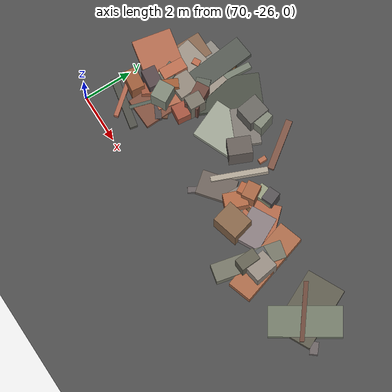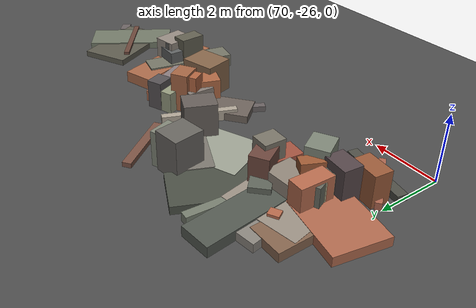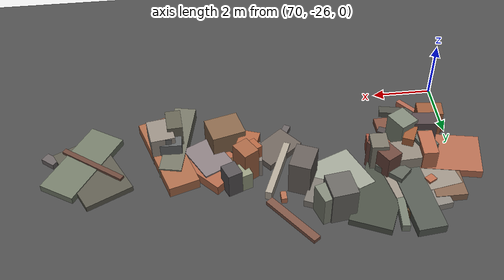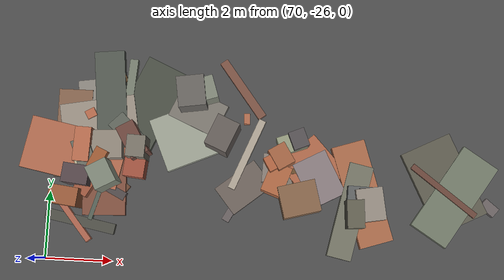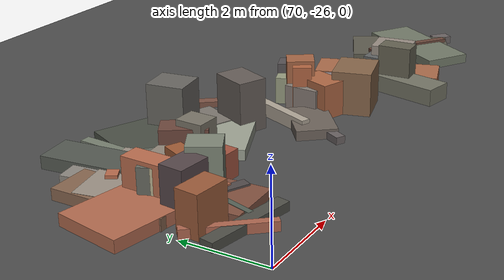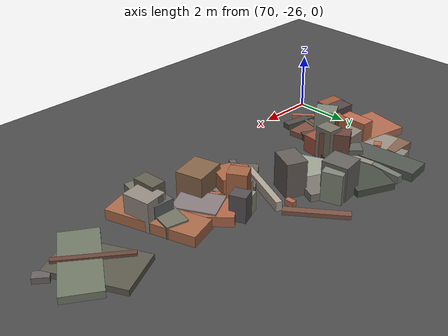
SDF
<sdf version="1.6">
 <world name="navitas_arena">
  <model name="ground_plane">
   <static>true</static>
   <link name="link">
    <collision name="collision">
     <geometry><plane><normal>0 0 1</normal><size>400 400</size></plane></geometry>
     <surface><friction><ode><mu>0.800</mu><mu2>0.800</mu2></ode></friction></surface>
    </collision>
    <visual name="visual">
     <cast_shadows>false</cast_shadows>
     <geometry><plane><normal>0 0 1</normal><size>400 400</size></plane></geometry>
     <material>
      <specular>0.04 0.04 0.04 1</specular>
      <script>
       <uri>file://media/materials/scripts/navitas_asphalt.material</uri>
       <name>Navitas/RealArenaAsphalt</name>
      </script>
     </material>
    </visual>
   </link>
  </model>
  <model name="deb_zor_6">
   <static>true</static>
   <pose>77.341 -22.770 0.000 0 0 0</pose>
   <link name="link">
    <collision name="col_0">
     <pose>-0.597 -0.091 0.574 0.000 0.000 3.672</pose>
     <geometry><box><size>0.575 0.445 1.149</size></box></geometry>
    </collision>
    <visual name="vis_0">
     <pose>-0.597 -0.091 0.574 0.000 0.000 3.672</pose>
     <geometry><box><size>0.575 0.445 1.149</size></box></geometry>
     <material>
      <ambient>0.65 0.37 0.24 1</ambient>
      <diffuse>0.70 0.40 0.26 1</diffuse>
      <specular>0.05 0.05 0.045 1</specular>
     </material>
    </visual>
    <collision name="col_1">
     <pose>0.073 0.618 0.449 0.000 0.000 3.534</pose>
     <geometry><box><size>0.486 0.552 0.898</size></box></geometry>
    </collision>
    <visual name="vis_1">
     <pose>0.073 0.618 0.449 0.000 0.000 3.534</pose>
     <geometry><box><size>0.486 0.552 0.898</size></box></geometry>
     <material>
      <ambient>0.31 0.30 0.30 1</ambient>
      <diffuse>0.34 0.32 0.33 1</diffuse>
      <specular>0.05 0.05 0.045 1</specular>
     </material>
    </visual>
    <collision name="col_2">
     <pose>-0.426 0.049 0.613 0.000 0.000 2.125</pose>
     <geometry><box><size>0.661 0.541 1.226</size></box></geometry>
    </collision>
    <visual name="vis_2">
     <pose>-0.426 0.049 0.613 0.000 0.000 2.125</pose>
     <geometry><box><size>0.661 0.541 1.226</size></box></geometry>
     <material>
      <ambient>0.60 0.37 0.25 1</ambient>
      <diffuse>0.65 0.40 0.27 1</diffuse>
      <specular>0.05 0.05 0.045 1</specular>
     </material>
    </visual>
    <collision name="col_3">
     <pose>0.476 0.273 0.083 0.000 0.000 1.727</pose>
     <geometry><box><size>0.301 0.242 0.166</size></box></geometry>
    </collision>
    <visual name="vis_3">
     <pose>0.476 0.273 0.083 0.000 0.000 1.727</pose>
     <geometry><box><size>0.301 0.242 0.166</size></box></geometry>
     <material>
      <ambient>0.56 0.33 0.20 1</ambient>
      <diffuse>0.60 0.35 0.22 1</diffuse>
      <specular>0.05 0.05 0.045 1</specular>
     </material>
    </visual>
    <collision name="col_4">
     <pose>-0.119 0.528 0.330 0.000 0.000 1.922</pose>
     <geometry><box><size>0.546 0.814 0.660</size></box></geometry>
    </collision>
    <visual name="vis_4">
     <pose>-0.119 0.528 0.330 0.000 0.000 1.922</pose>
     <geometry><box><size>0.546 0.814 0.660</size></box></geometry>
     <material>
      <ambient>0.54 0.56 0.47 1</ambient>
      <diffuse>0.59 0.61 0.50 1</diffuse>
      <specular>0.05 0.05 0.045 1</specular>
     </material>
    </visual>
    <collision name="col_5">
     <pose>0.541 -0.194 0.171 0.000 0.000 2.320</pose>
     <geometry><box><size>1.522 1.415 0.342</size></box></geometry>
    </collision>
    <visual name="vis_5">
     <pose>0.541 -0.194 0.171 0.000 0.000 2.320</pose>
     <geometry><box><size>1.522 1.415 0.342</size></box></geometry>
     <material>
      <ambient>0.64 0.38 0.27 1</ambient>
      <diffuse>0.69 0.41 0.29 1</diffuse>
      <specular>0.05 0.05 0.045 1</specular>
     </material>
    </visual>
    <collision name="col_6">
     <pose>-0.532 -0.263 0.124 0.000 0.000 3.391</pose>
     <geometry><box><size>0.328 0.463 0.247</size></box></geometry>
    </collision>
    <visual name="vis_6">
     <pose>-0.532 -0.263 0.124 0.000 0.000 3.391</pose>
     <geometry><box><size>0.328 0.463 0.247</size></box></geometry>
     <material>
      <ambient>0.59 0.34 0.24 1</ambient>
      <diffuse>0.64 0.37 0.26 1</diffuse>
      <specular>0.05 0.05 0.045 1</specular>
     </material>
    </visual>
   </link>
  </model>
  <model name="deb_zor_35">
   <static>true</static>
   <pose>71.144 -23.476 0.000 0 0 0</pose>
   <link name="link">
    <collision name="col_0">
     <pose>0.402 -0.218 0.121 0.000 0.000 2.673</pose>
     <geometry><box><size>1.668 0.255 0.243</size></box></geometry>
    </collision>
    <visual name="vis_0">
     <pose>0.402 -0.218 0.121 0.000 0.000 2.673</pose>
     <geometry><box><size>1.668 0.255 0.243</size></box></geometry>
     <material>
      <ambient>0.29 0.27 0.27 1</ambient>
      <diffuse>0.32 0.29 0.29 1</diffuse>
      <specular>0.05 0.05 0.045 1</specular>
     </material>
    </visual>
    <collision name="col_1">
     <pose>-0.045 -0.327 0.279 0.000 0.000 2.618</pose>
     <geometry><box><size>0.461 0.540 0.559</size></box></geometry>
    </collision>
    <visual name="vis_1">
     <pose>-0.045 -0.327 0.279 0.000 0.000 2.618</pose>
     <geometry><box><size>0.461 0.540 0.559</size></box></geometry>
     <material>
      <ambient>0.58 0.33 0.23 1</ambient>
      <diffuse>0.63 0.35 0.25 1</diffuse>
      <specular>0.05 0.05 0.045 1</specular>
     </material>
    </visual>
    <collision name="col_2">
     <pose>0.476 0.401 0.099 0.000 0.000 1.612</pose>
     <geometry><box><size>3.138 1.293 0.198</size></box></geometry>
    </collision>
    <visual name="vis_2">
     <pose>0.476 0.401 0.099 0.000 0.000 1.612</pose>
     <geometry><box><size>3.138 1.293 0.198</size></box></geometry>
     <material>
      <ambient>0.47 0.30 0.23 1</ambient>
      <diffuse>0.51 0.32 0.25 1</diffuse>
      <specular>0.05 0.05 0.045 1</specular>
     </material>
    </visual>
    <collision name="col_3">
     <pose>-0.069 0.325 0.430 0.000 0.000 1.785</pose>
     <geometry><box><size>0.779 0.447 0.860</size></box></geometry>
    </collision>
    <visual name="vis_3">
     <pose>-0.069 0.325 0.430 0.000 0.000 1.785</pose>
     <geometry><box><size>0.779 0.447 0.860</size></box></geometry>
     <material>
      <ambient>0.69 0.66 0.54 1</ambient>
      <diffuse>0.74 0.71 0.58 1</diffuse>
      <specular>0.05 0.05 0.045 1</specular>
     </material>
    </visual>
    <collision name="col_4">
     <pose>-0.203 -0.038 0.563 0.000 0.000 3.035</pose>
     <geometry><box><size>0.778 0.567 1.126</size></box></geometry>
    </collision>
    <visual name="vis_4">
     <pose>-0.203 -0.038 0.563 0.000 0.000 3.035</pose>
     <geometry><box><size>0.778 0.567 1.126</size></box></geometry>
     <material>
      <ambient>0.31 0.26 0.27 1</ambient>
      <diffuse>0.34 0.28 0.29 1</diffuse>
      <specular>0.05 0.05 0.045 1</specular>
     </material>
    </visual>
    <collision name="col_5">
     <pose>0.550 -0.018 0.624 0.000 0.000 2.084</pose>
     <geometry><box><size>0.741 0.660 1.248</size></box></geometry>
    </collision>
    <visual name="vis_5">
     <pose>0.550 -0.018 0.624 0.000 0.000 2.084</pose>
     <geometry><box><size>0.741 0.660 1.248</size></box></geometry>
     <material>
      <ambient>0.47 0.49 0.44 1</ambient>
      <diffuse>0.50 0.53 0.47 1</diffuse>
      <specular>0.05 0.05 0.045 1</specular>
     </material>
    </visual>
    <collision name="col_6">
     <pose>0.334 0.337 0.507 0.000 0.000 1.133</pose>
     <geometry><box><size>0.880 0.369 1.013</size></box></geometry>
    </collision>
    <visual name="vis_6">
     <pose>0.334 0.337 0.507 0.000 0.000 1.133</pose>
     <geometry><box><size>0.880 0.369 1.013</size></box></geometry>
     <material>
      <ambient>0.58 0.34 0.19 1</ambient>
      <diffuse>0.63 0.36 0.21 1</diffuse>
      <specular>0.05 0.05 0.045 1</specular>
     </material>
    </visual>
   </link>
  </model>
  <model name="deb_zor_62">
   <static>true</static>
   <pose>77.503 -23.407 0.000 0 0 0</pose>
   <link name="link">
    <collision name="col_0">
     <pose>0.583 0.139 0.195 0.000 0.000 2.063</pose>
     <geometry><box><size>1.441 1.080 0.391</size></box></geometry>
    </collision>
    <visual name="vis_0">
     <pose>0.583 0.139 0.195 0.000 0.000 2.063</pose>
     <geometry><box><size>1.441 1.080 0.391</size></box></geometry>
     <material>
      <ambient>0.50 0.45 0.47 1</ambient>
      <diffuse>0.54 0.49 0.50 1</diffuse>
      <specular>0.05 0.05 0.045 1</specular>
     </material>
    </visual>
    <collision name="col_1">
     <pose>-0.532 0.102 0.093 0.000 0.000 1.734</pose>
     <geometry><box><size>0.419 0.276 0.186</size></box></geometry>
    </collision>
    <visual name="vis_1">
     <pose>-0.532 0.102 0.093 0.000 0.000 1.734</pose>
     <geometry><box><size>0.419 0.276 0.186</size></box></geometry>
     <material>
      <ambient>0.37 0.38 0.35 1</ambient>
      <diffuse>0.40 0.41 0.38 1</diffuse>
      <specular>0.05 0.05 0.045 1</specular>
     </material>
    </visual>
    <collision name="col_2">
     <pose>-0.011 -0.522 0.530 0.000 0.000 3.405</pose>
     <geometry><box><size>1.114 0.942 1.061</size></box></geometry>
    </collision>
    <visual name="vis_2">
     <pose>-0.011 -0.522 0.530 0.000 0.000 3.405</pose>
     <geometry><box><size>1.114 0.942 1.061</size></box></geometry>
     <material>
      <ambient>0.49 0.37 0.27 1</ambient>
      <diffuse>0.53 0.40 0.29 1</diffuse>
      <specular>0.05 0.05 0.045 1</specular>
     </material>
    </visual>
    <collision name="col_3">
     <pose>0.257 0.404 0.188 0.000 0.000 3.289</pose>
     <geometry><box><size>1.091 0.150 0.375</size></box></geometry>
    </collision>
    <visual name="vis_3">
     <pose>0.257 0.404 0.188 0.000 0.000 3.289</pose>
     <geometry><box><size>1.091 0.150 0.375</size></box></geometry>
     <material>
      <ambient>0.39 0.28 0.17 1</ambient>
      <diffuse>0.42 0.30 0.18 1</diffuse>
      <specular>0.05 0.05 0.045 1</specular>
     </material>
    </visual>
    <collision name="col_4">
     <pose>-0.397 -0.106 0.165 0.000 0.000 1.950</pose>
     <geometry><box><size>0.512 0.412 0.331</size></box></geometry>
    </collision>
    <visual name="vis_4">
     <pose>-0.397 -0.106 0.165 0.000 0.000 1.950</pose>
     <geometry><box><size>0.512 0.412 0.331</size></box></geometry>
     <material>
      <ambient>0.46 0.42 0.38 1</ambient>
      <diffuse>0.49 0.46 0.41 1</diffuse>
      <specular>0.05 0.05 0.045 1</specular>
     </material>
    </visual>
   </link>
  </model>
  <model name="deb_zor_89">
   <static>true</static>
   <pose>71.985 -21.059 0.000 0 0 0</pose>
   <link name="link">
    <collision name="col_0">
     <pose>-0.629 -0.658 0.136 0.000 0.000 0.187</pose>
     <geometry><box><size>2.273 1.131 0.271</size></box></geometry>
    </collision>
    <visual name="vis_0">
     <pose>-0.629 -0.658 0.136 0.000 0.000 0.187</pose>
     <geometry><box><size>2.273 1.131 0.271</size></box></geometry>
     <material>
      <ambient>0.56 0.53 0.48 1</ambient>
      <diffuse>0.61 0.57 0.52 1</diffuse>
      <specular>0.05 0.05 0.045 1</specular>
     </material>
    </visual>
    <collision name="col_1">
     <pose>-0.582 -0.671 0.125 0.000 0.000 1.724</pose>
     <geometry><box><size>2.444 1.167 0.250</size></box></geometry>
    </collision>
    <visual name="vis_1">
     <pose>-0.582 -0.671 0.125 0.000 0.000 1.724</pose>
     <geometry><box><size>2.444 1.167 0.250</size></box></geometry>
     <material>
      <ambient>0.51 0.49 0.46 1</ambient>
      <diffuse>0.55 0.53 0.50 1</diffuse>
      <specular>0.05 0.05 0.045 1</specular>
     </material>
    </visual>
    <collision name="col_2">
     <pose>0.011 0.668 0.122 0.000 0.000 2.047</pose>
     <geometry><box><size>0.388 0.185 0.245</size></box></geometry>
    </collision>
    <visual name="vis_2">
     <pose>0.011 0.668 0.122 0.000 0.000 2.047</pose>
     <geometry><box><size>0.388 0.185 0.245</size></box></geometry>
     <material>
      <ambient>0.37 0.27 0.17 1</ambient>
      <diffuse>0.40 0.29 0.18 1</diffuse>
      <specular>0.05 0.05 0.045 1</specular>
     </material>
    </visual>
    <collision name="col_3">
     <pose>0.270 0.388 0.132 0.000 0.000 1.502</pose>
     <geometry><box><size>1.623 0.248 0.265</size></box></geometry>
    </collision>
    <visual name="vis_3">
     <pose>0.270 0.388 0.132 0.000 0.000 1.502</pose>
     <geometry><box><size>1.623 0.248 0.265</size></box></geometry>
     <material>
      <ambient>0.43 0.46 0.41 1</ambient>
      <diffuse>0.47 0.50 0.44 1</diffuse>
      <specular>0.05 0.05 0.045 1</specular>
     </material>
    </visual>
    <collision name="col_4">
     <pose>-0.194 -0.632 0.083 0.000 0.000 0.055</pose>
     <geometry><box><size>0.251 0.186 0.167</size></box></geometry>
    </collision>
    <visual name="vis_4">
     <pose>-0.194 -0.632 0.083 0.000 0.000 0.055</pose>
     <geometry><box><size>0.251 0.186 0.167</size></box></geometry>
     <material>
      <ambient>0.40 0.28 0.20 1</ambient>
      <diffuse>0.43 0.30 0.22 1</diffuse>
      <specular>0.05 0.05 0.045 1</specular>
     </material>
    </visual>
    <collision name="col_5">
     <pose>0.857 -0.171 0.119 0.000 0.000 1.148</pose>
     <geometry><box><size>2.644 1.367 0.237</size></box></geometry>
    </collision>
    <visual name="vis_5">
     <pose>0.857 -0.171 0.119 0.000 0.000 1.148</pose>
     <geometry><box><size>2.644 1.367 0.237</size></box></geometry>
     <material>
      <ambient>0.27 0.29 0.25 1</ambient>
      <diffuse>0.29 0.31 0.27 1</diffuse>
      <specular>0.05 0.05 0.045 1</specular>
     </material>
    </visual>
   </link>
  </model>
  <model name="deb_zor_98">
   <static>true</static>
   <pose>82.475 -23.756 0.000 0 0 0</pose>
   <link name="link">
    <collision name="col_0">
     <pose>-0.290 0.156 0.119 0.000 0.000 1.005</pose>
     <geometry><box><size>2.880 1.229 0.238</size></box></geometry>
    </collision>
    <visual name="vis_0">
     <pose>-0.290 0.156 0.119 0.000 0.000 1.005</pose>
     <geometry><box><size>2.880 1.229 0.238</size></box></geometry>
     <material>
      <ambient>0.42 0.44 0.38 1</ambient>
      <diffuse>0.45 0.48 0.41 1</diffuse>
      <specular>0.05 0.05 0.045 1</specular>
     </material>
    </visual>
    <collision name="col_1">
     <pose>-0.618 0.536 0.099 0.000 0.000 2.037</pose>
     <geometry><box><size>2.646 1.608 0.198</size></box></geometry>
    </collision>
    <visual name="vis_1">
     <pose>-0.618 0.536 0.099 0.000 0.000 2.037</pose>
     <geometry><box><size>2.646 1.608 0.198</size></box></geometry>
     <material>
      <ambient>0.34 0.33 0.29 1</ambient>
      <diffuse>0.37 0.36 0.31 1</diffuse>
      <specular>0.05 0.05 0.045 1</specular>
     </material>
    </visual>
    <collision name="col_2">
     <pose>0.762 -0.119 0.098 0.000 0.000 2.462</pose>
     <geometry><box><size>0.499 0.318 0.197</size></box></geometry>
    </collision>
    <visual name="vis_2">
     <pose>0.762 -0.119 0.098 0.000 0.000 2.462</pose>
     <geometry><box><size>0.499 0.318 0.197</size></box></geometry>
     <material>
      <ambient>0.39 0.36 0.36 1</ambient>
      <diffuse>0.42 0.39 0.39 1</diffuse>
      <specular>0.05 0.05 0.045 1</specular>
     </material>
    </visual>
    <collision name="col_3">
     <pose>-0.636 0.316 0.148 0.000 0.000 2.504</pose>
     <geometry><box><size>2.385 0.179 0.295</size></box></geometry>
    </collision>
    <visual name="vis_3">
     <pose>-0.636 0.316 0.148 0.000 0.000 2.504</pose>
     <geometry><box><size>2.385 0.179 0.295</size></box></geometry>
     <material>
      <ambient>0.39 0.26 0.22 1</ambient>
      <diffuse>0.42 0.28 0.23 1</diffuse>
      <specular>0.05 0.05 0.045 1</specular>
     </material>
    </visual>
   </link>
  </model>
  <model name="deb_zor_121">
   <static>true</static>
   <pose>79.412 -23.869 0.000 0 0 0</pose>
   <link name="link">
    <collision name="col_0">
     <pose>0.167 -0.127 0.521 0.000 0.000 1.738</pose>
     <geometry><box><size>0.967 0.783 1.042</size></box></geometry>
    </collision>
    <visual name="vis_0">
     <pose>0.167 -0.127 0.521 0.000 0.000 1.738</pose>
     <geometry><box><size>0.967 0.783 1.042</size></box></geometry>
     <material>
      <ambient>0.55 0.51 0.48 1</ambient>
      <diffuse>0.59 0.55 0.51 1</diffuse>
      <specular>0.05 0.05 0.045 1</specular>
     </material>
    </visual>
    <collision name="col_1">
     <pose>-0.363 -0.325 0.209 0.000 0.000 1.361</pose>
     <geometry><box><size>2.870 0.729 0.419</size></box></geometry>
    </collision>
    <visual name="vis_1">
     <pose>-0.363 -0.325 0.209 0.000 0.000 1.361</pose>
     <geometry><box><size>2.870 0.729 0.419</size></box></geometry>
     <material>
      <ambient>0.42 0.43 0.37 1</ambient>
      <diffuse>0.46 0.46 0.40 1</diffuse>
      <specular>0.05 0.05 0.045 1</specular>
     </material>
    </visual>
    <collision name="col_2">
     <pose>-0.021 0.221 0.182 0.000 0.000 1.885</pose>
     <geometry><box><size>3.131 1.015 0.364</size></box></geometry>
    </collision>
    <visual name="vis_2">
     <pose>-0.021 0.221 0.182 0.000 0.000 1.885</pose>
     <geometry><box><size>3.131 1.015 0.364</size></box></geometry>
     <material>
      <ambient>0.62 0.39 0.27 1</ambient>
      <diffuse>0.67 0.42 0.29 1</diffuse>
      <specular>0.05 0.05 0.045 1</specular>
     </material>
    </visual>
    <collision name="col_3">
     <pose>0.139 -0.113 0.509 0.000 0.000 -0.011</pose>
     <geometry><box><size>0.636 0.899 1.018</size></box></geometry>
    </collision>
    <visual name="vis_3">
     <pose>0.139 -0.113 0.509 0.000 0.000 -0.011</pose>
     <geometry><box><size>0.636 0.899 1.018</size></box></geometry>
     <material>
      <ambient>0.36 0.36 0.35 1</ambient>
      <diffuse>0.39 0.39 0.38 1</diffuse>
      <specular>0.05 0.05 0.045 1</specular>
     </material>
    </visual>
    <collision name="col_4">
     <pose>-0.148 -0.053 0.399 0.000 0.000 1.542</pose>
     <geometry><box><size>0.917 0.706 0.798</size></box></geometry>
    </collision>
    <visual name="vis_4">
     <pose>-0.148 -0.053 0.399 0.000 0.000 1.542</pose>
     <geometry><box><size>0.917 0.706 0.798</size></box></geometry>
     <material>
      <ambient>0.35 0.36 0.36 1</ambient>
      <diffuse>0.38 0.39 0.39 1</diffuse>
      <specular>0.05 0.05 0.045 1</specular>
     </material>
    </visual>
    <collision name="col_5">
     <pose>-0.097 -0.421 0.082 0.000 0.000 1.161</pose>
     <geometry><box><size>1.646 0.300 0.163</size></box></geometry>
    </collision>
    <visual name="vis_5">
     <pose>-0.097 -0.421 0.082 0.000 0.000 1.161</pose>
     <geometry><box><size>1.646 0.300 0.163</size></box></geometry>
     <material>
      <ambient>0.68 0.66 0.59 1</ambient>
      <diffuse>0.73 0.71 0.64 1</diffuse>
      <specular>0.05 0.05 0.045 1</specular>
     </material>
    </visual>
    <collision name="col_6">
     <pose>-0.277 -0.426 0.588 0.000 0.000 0.069</pose>
     <geometry><box><size>0.503 0.828 1.176</size></box></geometry>
    </collision>
    <visual name="vis_6">
     <pose>-0.277 -0.426 0.588 0.000 0.000 0.069</pose>
     <geometry><box><size>0.503 0.828 1.176</size></box></geometry>
     <material>
      <ambient>0.36 0.35 0.30 1</ambient>
      <diffuse>0.39 0.38 0.32 1</diffuse>
      <specular>0.05 0.05 0.045 1</specular>
     </material>
    </visual>
   </link>
  </model>
  <model name="deb_zor_150">
   <static>true</static>
   <pose>71.722 -22.827 0.000 0 0 0</pose>
   <link name="link">
    <collision name="col_0">
     <pose>0.932 0.203 0.594 0.000 0.000 3.099</pose>
     <geometry><box><size>0.551 0.644 1.187</size></box></geometry>
    </collision>
    <visual name="vis_0">
     <pose>0.932 0.203 0.594 0.000 0.000 3.099</pose>
     <geometry><box><size>0.551 0.644 1.187</size></box></geometry>
     <material>
      <ambient>0.44 0.43 0.38 1</ambient>
      <diffuse>0.48 0.46 0.41 1</diffuse>
      <specular>0.05 0.05 0.045 1</specular>
     </material>
    </visual>
    <collision name="col_1">
     <pose>0.792 0.405 0.522 0.000 0.000 2.107</pose>
     <geometry><box><size>1.038 0.558 1.045</size></box></geometry>
    </collision>
    <visual name="vis_1">
     <pose>0.792 0.405 0.522 0.000 0.000 2.107</pose>
     <geometry><box><size>1.038 0.558 1.045</size></box></geometry>
     <material>
      <ambient>0.40 0.26 0.22 1</ambient>
      <diffuse>0.43 0.28 0.24 1</diffuse>
      <specular>0.05 0.05 0.045 1</specular>
     </material>
    </visual>
    <collision name="col_2">
     <pose>-0.412 0.087 0.081 0.000 0.000 3.443</pose>
     <geometry><box><size>1.573 1.345 0.163</size></box></geometry>
    </collision>
    <visual name="vis_2">
     <pose>-0.412 0.087 0.081 0.000 0.000 3.443</pose>
     <geometry><box><size>1.573 1.345 0.163</size></box></geometry>
     <material>
      <ambient>0.47 0.32 0.26 1</ambient>
      <diffuse>0.51 0.34 0.28 1</diffuse>
      <specular>0.05 0.05 0.045 1</specular>
     </material>
    </visual>
    <collision name="col_3">
     <pose>0.860 -0.239 0.311 0.000 0.000 3.043</pose>
     <geometry><box><size>0.622 0.835 0.621</size></box></geometry>
    </collision>
    <visual name="vis_3">
     <pose>0.860 -0.239 0.311 0.000 0.000 3.043</pose>
     <geometry><box><size>0.622 0.835 0.621</size></box></geometry>
     <material>
      <ambient>0.60 0.31 0.23 1</ambient>
      <diffuse>0.64 0.33 0.25 1</diffuse>
      <specular>0.05 0.05 0.045 1</specular>
     </material>
    </visual>
    <collision name="col_4">
     <pose>-0.685 0.214 0.477 0.000 0.000 1.536</pose>
     <geometry><box><size>1.020 0.482 0.954</size></box></geometry>
    </collision>
    <visual name="vis_4">
     <pose>-0.685 0.214 0.477 0.000 0.000 1.536</pose>
     <geometry><box><size>1.020 0.482 0.954</size></box></geometry>
     <material>
      <ambient>0.68 0.40 0.29 1</ambient>
      <diffuse>0.73 0.43 0.31 1</diffuse>
      <specular>0.05 0.05 0.045 1</specular>
     </material>
    </visual>
    <collision name="col_5">
     <pose>-0.640 -0.034 0.431 0.000 0.000 3.528</pose>
     <geometry><box><size>0.517 0.862 0.863</size></box></geometry>
    </collision>
    <visual name="vis_5">
     <pose>-0.640 -0.034 0.431 0.000 0.000 3.528</pose>
     <geometry><box><size>0.517 0.862 0.863</size></box></geometry>
     <material>
      <ambient>0.38 0.39 0.35 1</ambient>
      <diffuse>0.41 0.42 0.38 1</diffuse>
      <specular>0.05 0.05 0.045 1</specular>
     </material>
    </visual>
   </link>
  </model>
  <model name="deb_zor_205">
   <static>true</static>
   <pose>71.332 -23.799 0.000 0 0 0</pose>
   <link name="link">
    <collision name="col_0">
     <pose>0.873 0.078 0.061 0.000 0.000 0.936</pose>
     <geometry><box><size>0.224 0.387 0.121</size></box></geometry>
    </collision>
    <visual name="vis_0">
     <pose>0.873 0.078 0.061 0.000 0.000 0.936</pose>
     <geometry><box><size>0.224 0.387 0.121</size></box></geometry>
     <material>
      <ambient>0.39 0.26 0.19 1</ambient>
      <diffuse>0.42 0.28 0.20 1</diffuse>
      <specular>0.05 0.05 0.045 1</specular>
     </material>
    </visual>
    <collision name="col_1">
     <pose>0.182 -0.159 0.105 0.000 0.000 1.290</pose>
     <geometry><box><size>1.732 0.129 0.209</size></box></geometry>
    </collision>
    <visual name="vis_1">
     <pose>0.182 -0.159 0.105 0.000 0.000 1.290</pose>
     <geometry><box><size>1.732 0.129 0.209</size></box></geometry>
     <material>
      <ambient>0.32 0.35 0.31 1</ambient>
      <diffuse>0.34 0.38 0.34 1</diffuse>
      <specular>0.05 0.05 0.045 1</specular>
     </material>
    </visual>
    <collision name="col_2">
     <pose>-0.652 0.994 0.140 0.000 0.000 -0.193</pose>
     <geometry><box><size>3.005 1.599 0.280</size></box></geometry>
    </collision>
    <visual name="vis_2">
     <pose>-0.652 0.994 0.140 0.000 0.000 -0.193</pose>
     <geometry><box><size>3.005 1.599 0.280</size></box></geometry>
     <material>
      <ambient>0.65 0.39 0.28 1</ambient>
      <diffuse>0.70 0.42 0.31 1</diffuse>
      <specular>0.05 0.05 0.045 1</specular>
     </material>
    </visual>
    <collision name="col_3">
     <pose>-0.743 -0.345 0.480 0.000 0.000 1.454</pose>
     <geometry><box><size>0.553 0.854 0.959</size></box></geometry>
    </collision>
    <visual name="vis_3">
     <pose>-0.743 -0.345 0.480 0.000 0.000 1.454</pose>
     <geometry><box><size>0.553 0.854 0.959</size></box></geometry>
     <material>
      <ambient>0.56 0.34 0.21 1</ambient>
      <diffuse>0.61 0.36 0.23 1</diffuse>
      <specular>0.05 0.05 0.045 1</specular>
     </material>
    </visual>
    <collision name="col_4">
     <pose>-0.648 -0.877 0.109 0.000 0.000 -0.884</pose>
     <geometry><box><size>1.914 0.180 0.218</size></box></geometry>
    </collision>
    <visual name="vis_4">
     <pose>-0.648 -0.877 0.109 0.000 0.000 -0.884</pose>
     <geometry><box><size>1.914 0.180 0.218</size></box></geometry>
     <material>
      <ambient>0.63 0.37 0.29 1</ambient>
      <diffuse>0.68 0.40 0.31 1</diffuse>
      <specular>0.05 0.05 0.045 1</specular>
     </material>
    </visual>
    <collision name="col_5">
     <pose>-0.333 -1.056 0.104 0.000 0.000 -0.190</pose>
     <geometry><box><size>2.129 0.315 0.207</size></box></geometry>
    </collision>
    <visual name="vis_5">
     <pose>-0.333 -1.056 0.104 0.000 0.000 -0.190</pose>
     <geometry><box><size>2.129 0.315 0.207</size></box></geometry>
     <material>
      <ambient>0.29 0.29 0.26 1</ambient>
      <diffuse>0.31 0.31 0.28 1</diffuse>
      <specular>0.05 0.05 0.045 1</specular>
     </material>
    </visual>
   </link>
  </model>
  <model name="deb_zor_226">
   <static>true</static>
   <pose>71.402 -21.884 0.000 0 0 0</pose>
   <link name="link">
    <collision name="col_0">
     <pose>0.294 0.748 0.153 0.000 0.000 1.678</pose>
     <geometry><box><size>2.983 0.912 0.306</size></box></geometry>
    </collision>
    <visual name="vis_0">
     <pose>0.294 0.748 0.153 0.000 0.000 1.678</pose>
     <geometry><box><size>2.983 0.912 0.306</size></box></geometry>
     <material>
      <ambient>0.31 0.32 0.30 1</ambient>
      <diffuse>0.33 0.35 0.32 1</diffuse>
      <specular>0.05 0.05 0.045 1</specular>
     </material>
    </visual>
    <collision name="col_1">
     <pose>-0.282 0.285 0.174 0.000 0.000 2.085</pose>
     <geometry><box><size>0.259 0.305 0.348</size></box></geometry>
    </collision>
    <visual name="vis_1">
     <pose>-0.282 0.285 0.174 0.000 0.000 2.085</pose>
     <geometry><box><size>0.259 0.305 0.348</size></box></geometry>
     <material>
      <ambient>0.67 0.39 0.28 1</ambient>
      <diffuse>0.72 0.42 0.30 1</diffuse>
      <specular>0.05 0.05 0.045 1</specular>
     </material>
    </visual>
    <collision name="col_2">
     <pose>0.268 -0.673 0.358 0.000 0.000 3.209</pose>
     <geometry><box><size>1.006 0.848 0.716</size></box></geometry>
    </collision>
    <visual name="vis_2">
     <pose>0.268 -0.673 0.358 0.000 0.000 3.209</pose>
     <geometry><box><size>1.006 0.848 0.716</size></box></geometry>
     <material>
      <ambient>0.53 0.49 0.45 1</ambient>
      <diffuse>0.57 0.53 0.48 1</diffuse>
      <specular>0.05 0.05 0.045 1</specular>
     </material>
    </visual>
    <collision name="col_3">
     <pose>0.837 -0.201 0.234 0.000 0.000 2.361</pose>
     <geometry><box><size>0.992 0.579 0.468</size></box></geometry>
    </collision>
    <visual name="vis_3">
     <pose>0.837 -0.201 0.234 0.000 0.000 2.361</pose>
     <geometry><box><size>0.992 0.579 0.468</size></box></geometry>
     <material>
      <ambient>0.36 0.37 0.34 1</ambient>
      <diffuse>0.38 0.40 0.36 1</diffuse>
      <specular>0.05 0.05 0.045 1</specular>
     </material>
    </visual>
    <collision name="col_4">
     <pose>-0.786 -0.325 0.133 0.000 0.000 1.576</pose>
     <geometry><box><size>2.661 1.022 0.266</size></box></geometry>
    </collision>
    <visual name="vis_4">
     <pose>-0.786 -0.325 0.133 0.000 0.000 1.576</pose>
     <geometry><box><size>2.661 1.022 0.266</size></box></geometry>
     <material>
      <ambient>0.49 0.37 0.29 1</ambient>
      <diffuse>0.53 0.40 0.31 1</diffuse>
      <specular>0.05 0.05 0.045 1</specular>
     </material>
    </visual>
   </link>
  </model>
  <model name="deb_zor_234">
   <static>true</static>
   <pose>75.742 -23.491 0.000 0 0 0</pose>
   <link name="link">
    <collision name="col_0">
     <pose>1.065 0.121 0.430 0.000 0.000 1.223</pose>
     <geometry><box><size>0.917 0.645 0.861</size></box></geometry>
    </collision>
    <visual name="vis_0">
     <pose>1.065 0.121 0.430 0.000 0.000 1.223</pose>
     <geometry><box><size>0.917 0.645 0.861</size></box></geometry>
     <material>
      <ambient>0.64 0.38 0.25 1</ambient>
      <diffuse>0.69 0.41 0.27 1</diffuse>
      <specular>0.05 0.05 0.045 1</specular>
     </material>
    </visual>
    <collision name="col_1">
     <pose>0.102 -0.121 0.118 0.000 0.000 0.683</pose>
     <geometry><box><size>1.459 0.968 0.235</size></box></geometry>
    </collision>
    <visual name="vis_1">
     <pose>0.102 -0.121 0.118 0.000 0.000 0.683</pose>
     <geometry><box><size>1.459 0.968 0.235</size></box></geometry>
     <material>
      <ambient>0.39 0.36 0.34 1</ambient>
      <diffuse>0.43 0.39 0.36 1</diffuse>
      <specular>0.05 0.05 0.045 1</specular>
     </material>
    </visual>
    <collision name="col_2">
     <pose>0.956 0.454 0.338 0.000 0.000 1.530</pose>
     <geometry><box><size>0.847 0.638 0.676</size></box></geometry>
    </collision>
    <visual name="vis_2">
     <pose>0.956 0.454 0.338 0.000 0.000 1.530</pose>
     <geometry><box><size>0.847 0.638 0.676</size></box></geometry>
     <material>
      <ambient>0.49 0.46 0.43 1</ambient>
      <diffuse>0.53 0.49 0.46 1</diffuse>
      <specular>0.05 0.05 0.045 1</specular>
     </material>
    </visual>
    <collision name="col_3">
     <pose>-0.311 -0.951 0.088 0.000 0.000 2.642</pose>
     <geometry><box><size>0.230 0.442 0.176</size></box></geometry>
    </collision>
    <visual name="vis_3">
     <pose>-0.311 -0.951 0.088 0.000 0.000 2.642</pose>
     <geometry><box><size>0.230 0.442 0.176</size></box></geometry>
     <material>
      <ambient>0.38 0.35 0.36 1</ambient>
      <diffuse>0.41 0.38 0.38 1</diffuse>
      <specular>0.05 0.05 0.045 1</specular>
     </material>
    </visual>
    <collision name="col_4">
     <pose>0.150 0.873 0.165 0.000 0.000 1.187</pose>
     <geometry><box><size>2.267 0.214 0.330</size></box></geometry>
    </collision>
    <visual name="vis_4">
     <pose>0.150 0.873 0.165 0.000 0.000 1.187</pose>
     <geometry><box><size>2.267 0.214 0.330</size></box></geometry>
     <material>
      <ambient>0.64 0.60 0.54 1</ambient>
      <diffuse>0.69 0.65 0.59 1</diffuse>
      <specular>0.05 0.05 0.045 1</specular>
     </material>
    </visual>
   </link>
  </model>
  <model name="deb_zor_262">
   <static>true</static>
   <pose>74.542 -21.459 0.000 0 0 0</pose>
   <link name="link">
    <collision name="col_0">
     <pose>0.060 0.657 0.534 0.000 0.000 0.319</pose>
     <geometry><box><size>0.565 0.700 1.069</size></box></geometry>
    </collision>
    <visual name="vis_0">
     <pose>0.060 0.657 0.534 0.000 0.000 0.319</pose>
     <geometry><box><size>0.565 0.700 1.069</size></box></geometry>
     <material>
      <ambient>0.47 0.49 0.44 1</ambient>
      <diffuse>0.51 0.53 0.47 1</diffuse>
      <specular>0.05 0.05 0.045 1</specular>
     </material>
    </visual>
    <collision name="col_1">
     <pose>-0.365 0.539 0.605 0.000 0.000 0.147</pose>
     <geometry><box><size>0.821 0.917 1.209</size></box></geometry>
    </collision>
    <visual name="vis_1">
     <pose>-0.365 0.539 0.605 0.000 0.000 0.147</pose>
     <geometry><box><size>0.821 0.917 1.209</size></box></geometry>
     <material>
      <ambient>0.38 0.37 0.35 1</ambient>
      <diffuse>0.41 0.40 0.38 1</diffuse>
      <specular>0.05 0.05 0.045 1</specular>
     </material>
    </visual>
    <collision name="col_2">
     <pose>0.611 -0.684 0.617 0.000 0.000 1.162</pose>
     <geometry><box><size>0.945 0.707 1.235</size></box></geometry>
    </collision>
    <visual name="vis_2">
     <pose>0.611 -0.684 0.617 0.000 0.000 1.162</pose>
     <geometry><box><size>0.945 0.707 1.235</size></box></geometry>
     <material>
      <ambient>0.37 0.34 0.32 1</ambient>
      <diffuse>0.40 0.37 0.35 1</diffuse>
      <specular>0.05 0.05 0.045 1</specular>
     </material>
    </visual>
    <collision name="col_3">
     <pose>-0.188 0.109 0.131 0.000 0.000 2.728</pose>
     <geometry><box><size>1.529 1.040 0.263</size></box></geometry>
    </collision>
    <visual name="vis_3">
     <pose>-0.188 0.109 0.131 0.000 0.000 2.728</pose>
     <geometry><box><size>1.529 1.040 0.263</size></box></geometry>
     <material>
      <ambient>0.45 0.44 0.41 1</ambient>
      <diffuse>0.49 0.47 0.44 1</diffuse>
      <specular>0.05 0.05 0.045 1</specular>
     </material>
    </visual>
   </link>
  </model>
  <model name="deb_zor_361">
   <static>true</static>
   <pose>74.756 -21.247 0.000 0 0 0</pose>
   <link name="link">
    <collision name="col_0">
     <pose>-0.680 -0.864 0.122 0.000 0.000 0.409</pose>
     <geometry><box><size>1.898 1.655 0.245</size></box></geometry>
    </collision>
    <visual name="vis_0">
     <pose>-0.680 -0.864 0.122 0.000 0.000 0.409</pose>
     <geometry><box><size>1.898 1.655 0.245</size></box></geometry>
     <material>
      <ambient>0.57 0.59 0.53 1</ambient>
      <diffuse>0.62 0.64 0.58 1</diffuse>
      <specular>0.05 0.05 0.045 1</specular>
     </material>
    </visual>
    <collision name="col_1">
     <pose>1.083 -0.271 0.104 0.000 0.000 1.587</pose>
     <geometry><box><size>0.317 0.182 0.209</size></box></geometry>
    </collision>
    <visual name="vis_1">
     <pose>1.083 -0.271 0.104 0.000 0.000 1.587</pose>
     <geometry><box><size>0.317 0.182 0.209</size></box></geometry>
     <material>
      <ambient>0.64 0.40 0.29 1</ambient>
      <diffuse>0.70 0.43 0.31 1</diffuse>
      <specular>0.05 0.05 0.045 1</specular>
     </material>
    </visual>
    <collision name="col_2">
     <pose>0.918 0.642 0.072 0.000 0.000 -0.924</pose>
     <geometry><box><size>2.098 0.265 0.144</size></box></geometry>
    </collision>
    <visual name="vis_2">
     <pose>0.918 0.642 0.072 0.000 0.000 -0.924</pose>
     <geometry><box><size>2.098 0.265 0.144</size></box></geometry>
     <material>
      <ambient>0.46 0.30 0.25 1</ambient>
      <diffuse>0.49 0.33 0.27 1</diffuse>
      <specular>0.05 0.05 0.045 1</specular>
     </material>
    </visual>
    <collision name="col_3">
     <pose>0.014 -1.161 0.066 0.000 0.000 0.364</pose>
     <geometry><box><size>1.111 0.184 0.131</size></box></geometry>
    </collision>
    <visual name="vis_3">
     <pose>0.014 -1.161 0.066 0.000 0.000 0.364</pose>
     <geometry><box><size>1.111 0.184 0.131</size></box></geometry>
     <material>
      <ambient>0.61 0.58 0.50 1</ambient>
      <diffuse>0.66 0.62 0.54 1</diffuse>
      <specular>0.05 0.05 0.045 1</specular>
     </material>
    </visual>
   </link>
  </model>
 </world>
</sdf>
